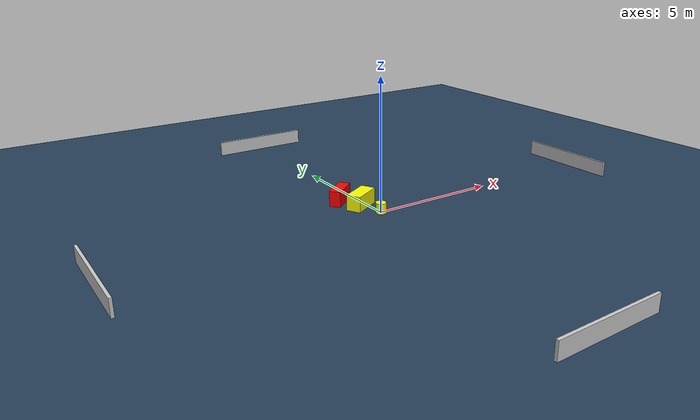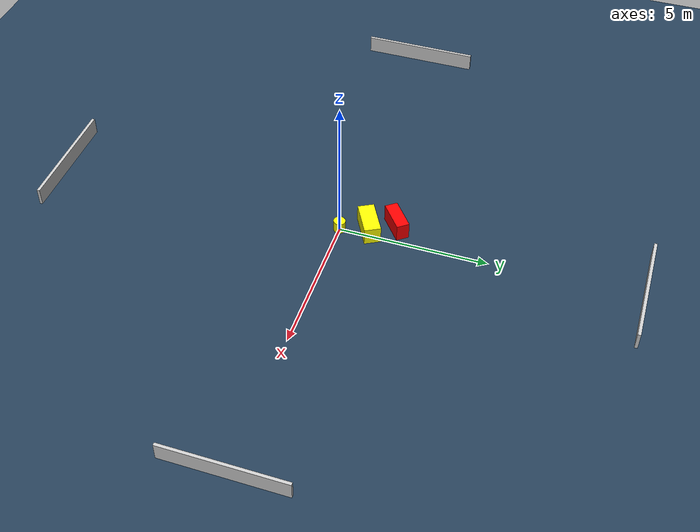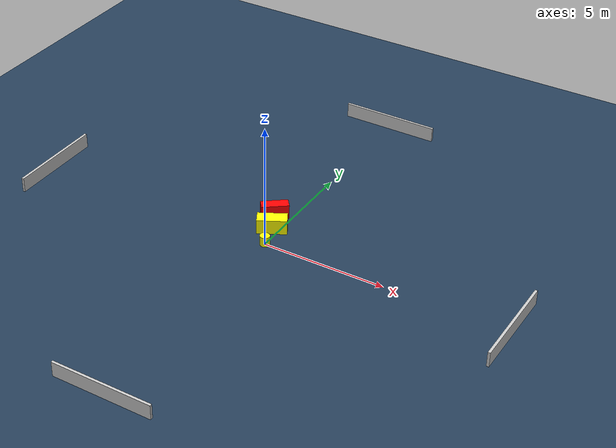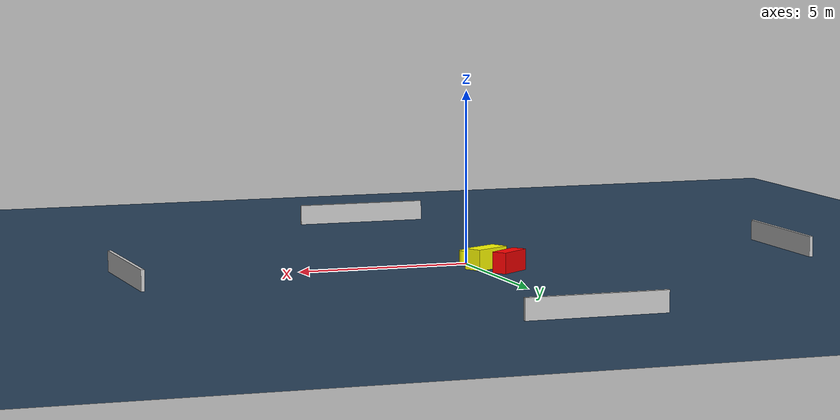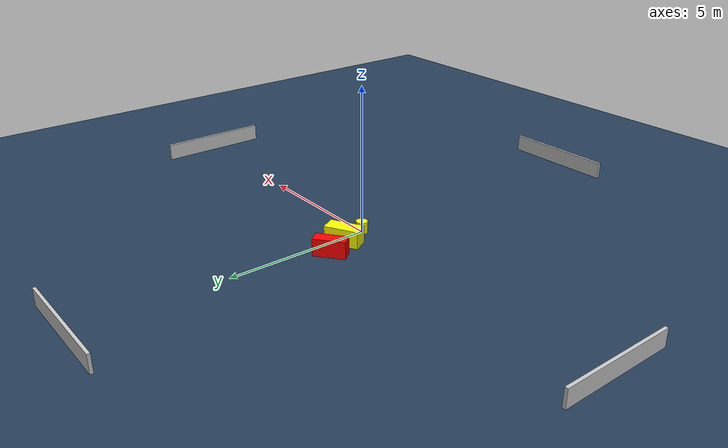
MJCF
<?xml version="1.0" ?>
<mujoco model="generated_environment">
  <option timestep="0.01" integrator="RK4" cone="elliptic"/>
  <default>
    <geom density="1"/>
  </default>
  <asset>
    <texture builtin="gradient" height="3072" name="skybox" rgb1="0.3 0.5 0.7" rgb2="0 0 0" type="skybox" width="512"/>
    <texture builtin="checker" height="300" name="groundplane" rgb1="0.2 0.3 0.4" rgb2="0.1 0.2 0.3" type="2d" width="300"/>
    <material name="groundplane" reflectance="0.2" texrepeat="5 5" texture="groundplane"/>
  </asset>
  <worldbody>
    <light dir="0 0 -1" directional="true" pos="0 0 1.5"/>
    <geom condim="3" friction="0.5 0.005 0.001" material="groundplane" name="floor" pos="0 0 0" size="0 0 0.05" type="plane"/>
    <body name="walls">
      <geom name="wall_1" condim="4" pos="-10.0 0.0 0.3" rgba="0.800000011920929 0.800000011920929 0.800000011920929 1.0" size="0.05 2.0 0.3" type="box"/>
      <geom name="wall_2" condim="4" pos="10.0 0.0 0.3" rgba="0.800000011920929 0.800000011920929 0.800000011920929 1.0" size="0.05 2.0 0.3" type="box"/>
      <geom name="wall_3" condim="4" pos="0.0 -10.0 0.3" rgba="0.800000011920929 0.800000011920929 0.800000011920929 1.0" size="2.0 0.05 0.3" type="box"/>
      <geom name="wall_4" condim="4" pos="0.0 10.0 0.3" rgba="0.800000011920929 0.800000011920929 0.800000011920929 1.0" size="2.0 0.05 0.3" type="box"/>
    </body>
    <body name="robot">
      <joint name="joint_x" type="slide" pos="0 0 0" axis="1 0 0"/>
      <joint name="joint_y" type="slide" pos="0 0 0" axis="0 1 0"/>
      <geom name="robot" type="cylinder" pos="0.0 0.0 0.2" size="0.2 0.2 0.0" mass="5.0" friction="1.0 0.005 0.0001" condim="4" rgba="1.0 1.0 0.0 1.0"/>
    </body>
    <body name="obstacle_1_movable">
      <geom name="obstacle_1_movable" condim="4" pos="-0.2601074231777223 0.9365389627462067 0.3" euler="0 0 118.50410761087521" friction="0.0 0.005 0.001" rgba="1.0 1.0 0.0 1.0" size="0.2756843985004989 0.5854675983392339 0.3" type="box" mass="0.1"/>
      <joint type="free"/>
    </body>
    <body name="obstacle_2_static">
      <geom name="obstacle_2_static" condim="4" pos="-0.6573320787939002 1.7698465692904262 0.3" euler="0 0 37.82038957229663" friction="0.0 0.005 0.001" rgba="1.0 0.0 0.0 1.0" size="0.5397335945854409 0.21672307300576876 0.3" type="box"/>
    </body>
  </worldbody>
  <actuator>
    <motor name="actuator_x" joint="joint_x" gear="1" ctrlrange="-1 1"/>
    <motor name="actuator_y" joint="joint_y" gear="1" ctrlrange="-1 1"/>
  </actuator>
</mujoco>
